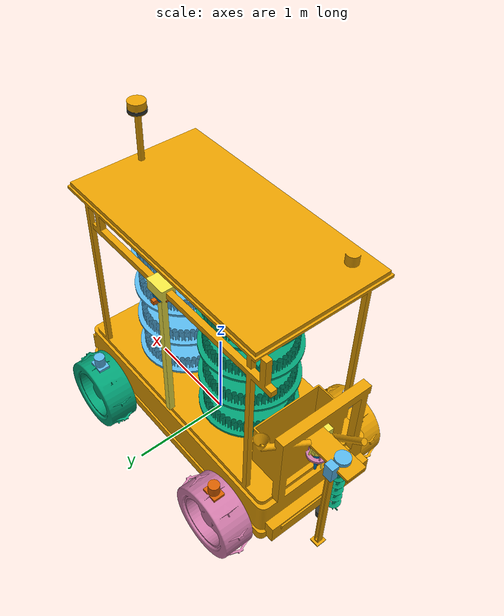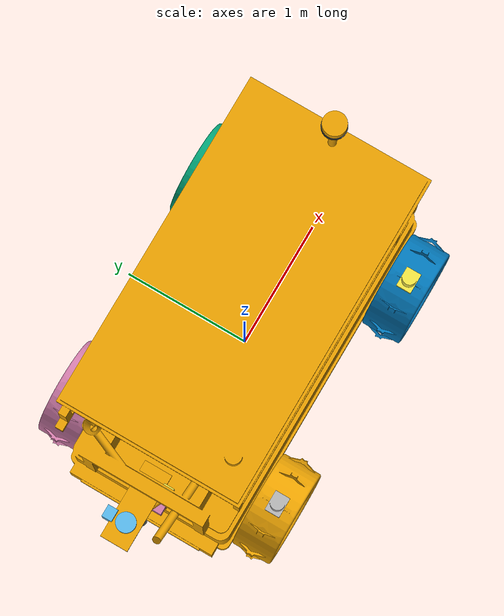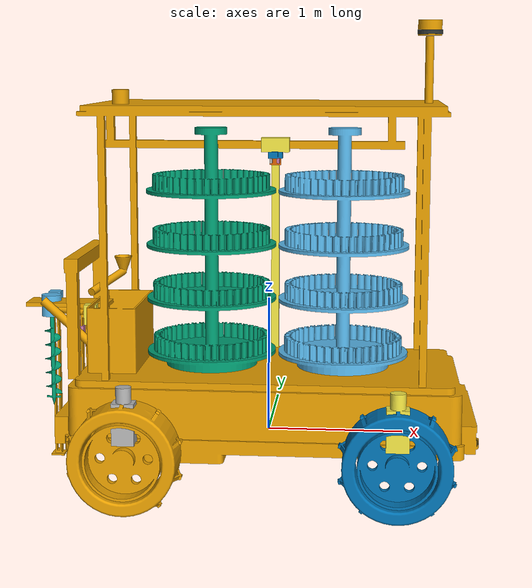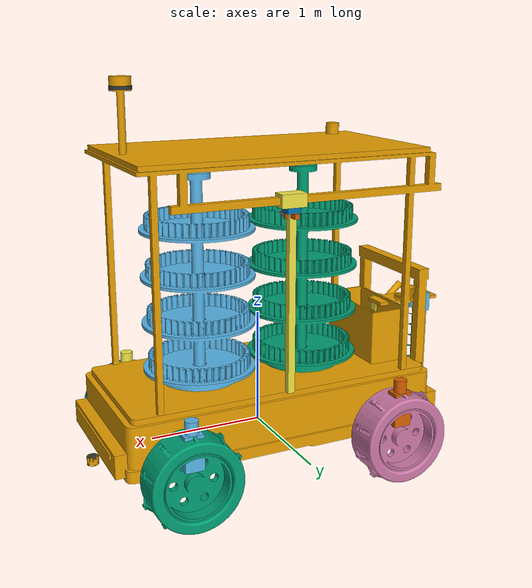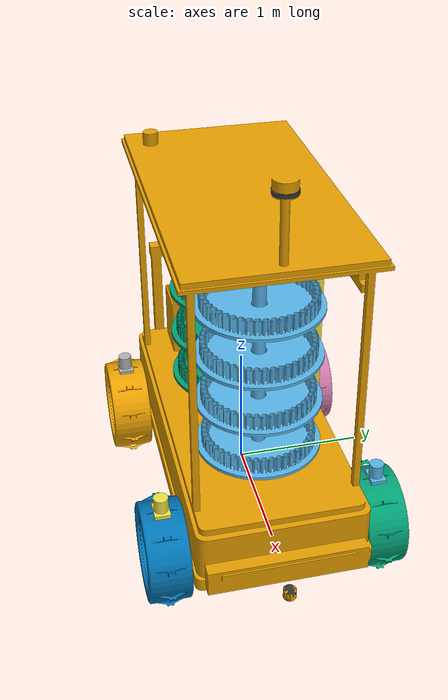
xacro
<?xml version="1.0"?>
<robot name="jaal" xmlns:xacro="http://www.ros.org/wiki/xacro">
  <xacro:arg name="ns" default="jaal_1"/>
  <xacro:arg name="soil_map" default=""/>
  <xacro:arg name="lidar" default="true"/>
  <xacro:arg name="gnss_sigma" default="0.02"/>
  <xacro:arg name="inspect_cam" default="false"/>
  <xacro:property name="ns" value="$(arg ns)"/>
  <xacro:property name="R" value="jaal"/>
  <xacro:include filename="$(find fs_description)/urdf/common.xacro"/>

  <link name="base_link">
    <!-- 30 kWh LFP pack low in the body; payload half used -->
    <xacro:box_inertial m="1000" x="2.8" y="1.3" z="0.9"><origin xyz="0 0 0.28"/></xacro:box_inertial>
    <xacro:cbox xyz="0 0 0.22" size="2.8 1.3 0.45"/>
    <xacro:mesh_visual robot="${R}" link="base_link"/>
  </link>

  <xacro:macro name="module" params="tag x y">
    <joint name="steer_${tag}_joint" type="revolute">
      <parent link="base_link"/><child link="steer_${tag}_link"/>
      <origin xyz="${x} ${y} 0.25"/><axis xyz="0 0 1"/>
      <limit lower="-2.0" upper="2.0" effort="800" velocity="3.0"/><dynamics damping="5"/>
    </joint>
    <link name="steer_${tag}_link">
      <inertial><mass value="8"/><inertia ixx="0.1" iyy="0.1" izz="0.1" ixy="0" ixz="0" iyz="0"/></inertial>
      <xacro:mesh_visual robot="${R}" link="steer_${tag}_link"/>
    </link>
    <xacro:wheel effort="900" name="wheel_${tag}" parent="steer_${tag}_link" xyz="0 0 -0.25" r="0.38" w="0.32" m="42" robot="${R}"/>
  </xacro:macro>
  <xacro:module tag="fl" x="0.95" y="0.83"/>
  <xacro:module tag="fr" x="0.95" y="-0.83"/>
  <xacro:module tag="rl" x="-0.95" y="0.83"/>
  <xacro:module tag="rr" x="-0.95" y="-0.83"/>

  <!-- ===================== sapling drums ===================== -->
  <xacro:macro name="drum" params="tag x">
    <joint name="drum_${tag}_joint" type="continuous">
      <parent link="base_link"/><child link="drum_${tag}_link"/>
      <origin xyz="${x} 0 0.5"/><axis xyz="0 0 1"/><limit effort="300" velocity="2"/><dynamics damping="5"/>
    </joint>
    <link name="drum_${tag}_link">
      <inertial><origin xyz="0 0 0.8"/><mass value="45"/><inertia ixx="12" iyy="12" izz="5" ixy="0" ixz="0" iyz="0"/></inertial>
      <xacro:mesh_visual robot="${R}" link="drum_${tag}_link"/>
    </link>
  </xacro:macro>
  <xacro:drum tag="f" x="0.55"/>
  <xacro:drum tag="r" x="-0.43"/>

  <!-- ===================== Cartesian plug picker ===================== -->
  <joint name="picker_x_joint" type="prismatic">
    <parent link="base_link"/><child link="picker_x_link"/>
    <origin xyz="0 0.62 2.1"/><axis xyz="1 0 0"/>
    <limit lower="-1.3" upper="0.8" effort="500" velocity="1.0"/><dynamics damping="20"/>
  </joint>
  <link name="picker_x_link">
    <inertial><origin xyz="0 0 -0.8"/><mass value="8"/><inertia ixx="1.7" iyy="1.7" izz="0.02" ixy="0" ixz="0" iyz="0"/></inertial>
    <xacro:mesh_visual robot="${R}" link="picker_x_link"/>
  </link>
  <joint name="picker_z_joint" type="prismatic">
    <parent link="picker_x_link"/><child link="picker_z_link"/>
    <origin xyz="0 0 -0.06"/><axis xyz="0 0 -1"/>
    <limit lower="0" upper="1.5" effort="300" velocity="1.0"/><dynamics damping="20"/>
  </joint>
  <link name="picker_z_link">
    <inertial><mass value="2"/><inertia ixx="0.005" iyy="0.005" izz="0.005" ixy="0" ixz="0" iyz="0"/></inertial>
    <xacro:mesh_visual robot="${R}" link="picker_z_link"/>
  </link>
  <joint name="picker_y_joint" type="prismatic">
    <parent link="picker_z_link"/><child link="picker_y_link"/>
    <origin xyz="0 0.10 -0.06"/><axis xyz="0 -1 0"/>
    <limit lower="0" upper="0.16" effort="200" velocity="0.5"/><dynamics damping="10"/>
  </joint>
  <link name="picker_y_link">
    <inertial><mass value="1"/><inertia ixx="0.003" iyy="0.003" izz="0.003" ixy="0" ixz="0" iyz="0"/></inertial>
    <xacro:mesh_visual robot="${R}" link="picker_y_link"/>
  </link>
  <xacro:macro name="h_finger" params="tag x axis">
    <joint name="finger_${tag}_joint" type="prismatic">
      <parent link="picker_y_link"/><child link="finger_${tag}_link"/>
      <origin xyz="${x} -0.125 0"/><axis xyz="${axis} 0 0"/>
      <limit lower="0" upper="0.014" effort="100" velocity="0.1"/><dynamics damping="2"/>
    </joint>
    <link name="finger_${tag}_link">
      <inertial><mass value="0.2"/><inertia ixx="0.0002" iyy="0.0002" izz="0.0002" ixy="0" ixz="0" iyz="0"/></inertial>
      <xacro:mesh_visual robot="${R}" link="finger_${tag}_link"/>
    </link>
  </xacro:macro>
  <xacro:h_finger tag="a" x="0.03" axis="-1"/>
  <xacro:h_finger tag="b" x="-0.03" axis="1"/>

  <!-- ===================== rear planting head on a shuttle ===================== -->
  <joint name="shuttle_joint" type="prismatic">
    <parent link="base_link"/><child link="shuttle_link"/>
    <origin xyz="-1.65 0 0.92"/><axis xyz="1 0 0"/>
    <limit lower="-0.30" upper="0.02" effort="2000" velocity="0.6"/><dynamics damping="40"/>
  </joint>
  <link name="shuttle_link">
    <inertial><origin xyz="0.14 0 0"/><mass value="12"/><inertia ixx="0.1" iyy="0.4" izz="0.4" ixy="0" ixz="0" iyz="0"/></inertial>
    <xacro:mesh_visual robot="${R}" link="shuttle_link"/>
  </link>
  <xacro:auger_head robot="${R}" parent="shuttle_link" xyz="0 0 0" length="0.72" stroke="1.1"/>
  <xacro:duckbill_head robot="${R}" parent="shuttle_link" xyz="0.28 0 -0.04" stroke="1.2" tamp_xyz="0.28 0 -0.18" tamp_stroke="1.2"/>

  <xacro:gnss ns="${ns}" parent="base_link" xyz="1.15 0 2.95" sigma="$(arg gnss_sigma)"/>
  <xacro:imu ns="${ns}" name="imu" parent="base_link" xyz="0 0 0.3"/>
  <xacro:if value="$(arg lidar)">
    <xacro:lidar2d ns="${ns}" parent="base_link" xyz="1.52 0 -0.08"/>  <!-- 0.30 m above ground: sees stumps -->
    <!-- rear: the planting head works at the back, where people walk up to it -->
    <xacro:lidar2d ns="${ns}" parent="base_link" xyz="-1.52 0 -0.08" rpy="0 0 3.14159" name="lidar_rear" topic="scan_rear"/>
  </xacro:if>
  <xacro:if value="$(arg inspect_cam)">
    <xacro:inspect_camera ns="${ns}" parent="base_link" xyz="-0.9 4.4 1.7" rpy="0 0.22 -1.5708"/>
  </xacro:if>

  <gazebo>
    <plugin filename="fs_swerve_drive_system" name="fs::SwerveDrive">
      <module><steer_joint>steer_fl_joint</steer_joint><wheel_joint>wheel_fl_joint</wheel_joint><x>0.95</x><y>0.83</y></module>
      <module><steer_joint>steer_fr_joint</steer_joint><wheel_joint>wheel_fr_joint</wheel_joint><x>0.95</x><y>-0.83</y></module>
      <module><steer_joint>steer_rl_joint</steer_joint><wheel_joint>wheel_rl_joint</wheel_joint><x>-0.95</x><y>0.83</y></module>
      <module><steer_joint>steer_rr_joint</steer_joint><wheel_joint>wheel_rr_joint</wheel_joint><x>-0.95</x><y>-0.83</y></module>
      <wheel_radius>0.38</wheel_radius>
      <topic>/model/${ns}/cmd_vel</topic><odom_topic>/model/${ns}/odometry</odom_topic>
      <odom_frame>${ns}/odom</odom_frame><base_frame>${ns}/base_link</base_frame>
      <max_speed>1.5</max_speed><max_accel>0.6</max_accel><max_yaw_rate>0.8</max_yaw_rate>
      <max_steer_rate>2.5</max_steer_rate><steer_p_gain>10</steer_p_gain>
    </plugin>
    <xacro:common_plugins ns="${ns}"/>
    <xacro:pos_controller ns="${ns}" joint="drum_f_joint" p="4" vmax="1.5" init="0.0"/>
    <xacro:pos_controller ns="${ns}" joint="drum_r_joint" p="4" vmax="1.5" init="0.0"/>
    <xacro:pos_controller ns="${ns}" joint="picker_x_joint" p="4" vmax="1.0" init="-1.2"/>
    <xacro:pos_controller ns="${ns}" joint="picker_z_joint" p="4" vmax="1.0" init="0.74"/>
    <xacro:pos_controller ns="${ns}" joint="picker_y_joint" p="5" vmax="0.4" init="0.0"/>
    <xacro:pos_controller ns="${ns}" joint="finger_a_joint" p="6" vmax="0.08" init="0.0"/>
    <xacro:pos_controller ns="${ns}" joint="finger_b_joint" p="6" vmax="0.08" init="0.0"/>
    <xacro:pos_controller ns="${ns}" joint="shuttle_joint" p="4" vmax="0.6" init="0.0"/>
    <xacro:pos_controller ns="${ns}" joint="duckbill_feed_joint" p="6" vmax="1.0" init="0.0"/>
    <xacro:pos_controller ns="${ns}" joint="jaw_l_joint" p="6" vmax="2.0" init="0.0"/>
    <xacro:pos_controller ns="${ns}" joint="jaw_r_joint" p="6" vmax="2.0" init="0.0"/>
    <xacro:pos_controller ns="${ns}" joint="tamp_joint" p="6" vmax="1.0" init="0.0"/>
    <plugin filename="fs_terramechanics_system" name="fs::Terramechanics">
      <soil_map>$(arg soil_map)</soil_map>
      <topic>/model/${ns}/terramechanics</topic>
      <xacro:tm_wheel link="wheel_fl_link" r="0.38" b="0.32" l="0.19"/>
      <xacro:tm_wheel link="wheel_fr_link" r="0.38" b="0.32" l="0.19"/>
      <xacro:tm_wheel link="wheel_rl_link" r="0.38" b="0.32" l="0.19"/>
      <xacro:tm_wheel link="wheel_rr_link" r="0.38" b="0.32" l="0.19"/>
    </plugin>
    <plugin filename="fs_auger_soil_system" name="fs::AugerSoil">
      <soil_map>$(arg soil_map)</soil_map>
      <feed_joint>auger_feed_joint</feed_joint><spin_joint>auger_spin_joint</spin_joint>
      <tip_link>auger_link</tip_link><reaction_link>shuttle_link</reaction_link><tip_offset>0 0 -0.72</tip_offset><tool_axis>0 0 -1</tool_axis>
      <diameter>0.12</diameter><max_power>4000</max_power><efficiency>0.85</efficiency>
      <max_thrust>3000</max_thrust><max_feed>0.15</max_feed><rpm>140</rpm><max_stroke>1.1</max_stroke>
      <cmd_topic>/model/${ns}/auger/cmd</cmd_topic><status_topic>/model/${ns}/auger/status</status_topic>
    </plugin>
    <plugin filename="fs_plug_inventory_system" name="fs::PlugInventory">
      <xacro:plug_inventory_begin ns="${ns}"/>
      <carrier><name>drum_f</name><link>drum_f_link</link><ring><radius>0.41</radius><count>45</count><tiers>4</tiers><z0>0.117</z0><dz>0.4</dz></ring><fill>180</fill></carrier>
      <carrier><name>drum_r</name><link>drum_r_link</link><ring><radius>0.41</radius><count>45</count><tiers>4</tiers><z0>0.117</z0><dz>0.4</dz></ring><fill>180</fill></carrier>
      <holder><name>gripper</name><link>picker_y_link</link><xyz>0 -0.19 -0.06</xyz></holder>
      <holder><name>duckbill</name><link>duckbill_feed_link</link><xyz>0 0 -0.38</xyz></holder>
    </plugin>
  </gazebo>
</robot>

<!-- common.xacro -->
<!--
  Shared macros for the ForestStark robots: inertia helpers, materials, wheels, sensors and the
  auger head. Every gz topic is under /model/${ns}/...; fs_bringup's bridge maps them to /${ns}/...
-->
<robot xmlns:xacro="http://www.ros.org/wiki/xacro">

  <xacro:property name="PI" value="3.14159265"/>
  <!-- Wheel/track collisions are nearly frictionless: fs::Terramechanics supplies the soil forces. -->
  <xacro:property name="TYRE_MU" value="0.02"/>

  <material name="fs_yellow"><color rgba="0.886 0.647 0.078 1"/></material>
  <material name="fs_graphite"><color rgba="0.19 0.21 0.20 1"/></material>
  <material name="fs_steel"><color rgba="0.56 0.60 0.61 1"/></material>
  <material name="fs_rubber"><color rgba="0.10 0.11 0.11 1"/></material>
  <material name="fs_blue"><color rgba="0.18 0.42 0.56 1"/></material>
  <material name="fs_leaf"><color rgba="0.31 0.60 0.25 1"/></material>
  <material name="fs_glass"><color rgba="0.66 0.80 0.84 0.35"/></material>
  <material name="fs_solar"><color rgba="0.12 0.20 0.33 1"/></material>
  <material name="fs_skin"><color rgba="0.72 0.50 0.35 1"/></material>
  <material name="fs_cloth"><color rgba="0.23 0.35 0.55 1"/></material>
  <material name="fs_orange"><color rgba="1.0 0.48 0.10 1"/></material>
  <material name="fs_shade"><color rgba="0.21 0.37 0.23 0.6"/></material>

  <xacro:macro name="box_inertial" params="m x y z *origin">
    <inertial>
      <xacro:insert_block name="origin"/>
      <mass value="${m}"/>
      <inertia ixx="${m*(y*y+z*z)/12}" iyy="${m*(x*x+z*z)/12}" izz="${m*(x*x+y*y)/12}" ixy="0" ixz="0" iyz="0"/>
    </inertial>
  </xacro:macro>

  <xacro:macro name="cyl_inertial_y" params="m r l">
    <inertial>
      <mass value="${m}"/>
      <inertia ixx="${m*(3*r*r+l*l)/12}" iyy="${m*r*r/2}" izz="${m*(3*r*r+l*l)/12}" ixy="0" ixz="0" iyz="0"/>
    </inertial>
  </xacro:macro>

  <xacro:macro name="vbox" params="xyz size material rpy:='0 0 0'">
    <visual><origin xyz="${xyz}" rpy="${rpy}"/><geometry><box size="${size}"/></geometry><material name="${material}"/></visual>
  </xacro:macro>
  <xacro:macro name="vcyl" params="xyz r l material rpy:='0 0 0'">
    <visual><origin xyz="${xyz}" rpy="${rpy}"/><geometry><cylinder radius="${r}" length="${l}"/></geometry><material name="${material}"/></visual>
  </xacro:macro>
  <xacro:macro name="cbox" params="xyz size rpy:='0 0 0'">
    <collision><origin xyz="${xyz}" rpy="${rpy}"/><geometry><box size="${size}"/></geometry></collision>
  </xacro:macro>

  <xacro:macro name="mesh_visual" params="robot link">
    <visual><geometry><mesh filename="file://$(find fs_description)/meshes/${robot}/${link}.obj"/></geometry></visual>
  </xacro:macro>

  <!-- effort: the most torque the drive can put on the wheel, N m (free-rolling wheels: bearing drag only) -->
  <xacro:macro name="wheel" params="name parent xyz r w m rim:=fs_yellow shape:=cylinder robot:='' effort:=6000">
    <joint name="${name}_joint" type="continuous">
      <parent link="${parent}"/><child link="${name}_link"/>
      <origin xyz="${xyz}"/><axis xyz="0 1 0"/>
      <limit effort="${effort}" velocity="40"/><dynamics damping="0.5"/>
    </joint>
    <link name="${name}_link">
      <xacro:cyl_inertial_y m="${m}" r="${r}" l="${w}"/>
      <xacro:if value="${robot != ''}"><xacro:mesh_visual robot="${robot}" link="${name}_link"/></xacro:if>
      <xacro:unless value="${robot != ''}">
        <visual><origin rpy="${PI/2} 0 0"/><geometry><cylinder radius="${r}" length="${w}"/></geometry><material name="fs_rubber"/></visual>
        <visual><origin rpy="${PI/2} 0 0"/><geometry><cylinder radius="${r*0.62}" length="${w*1.04}"/></geometry><material name="${rim}"/></visual>
      </xacro:unless>
      <collision>
        <xacro:if value="${shape == 'sphere'}"><geometry><sphere radius="${r}"/></geometry></xacro:if>
        <xacro:unless value="${shape == 'sphere'}"><origin rpy="${PI/2} 0 0"/><geometry><cylinder radius="${r}" length="${w}"/></geometry></xacro:unless>
      </collision>
    </link>
    <gazebo reference="${name}_link"><mu1>${TYRE_MU}</mu1><mu2>${TYRE_MU}</mu2><kp>2e6</kp><kd>1e4</kd></gazebo>
  </xacro:macro>

  <xacro:macro name="tm_wheel" params="link r b l">
    <wheel><link>${link}</link><radius>${r}</radius><width>${b}</width><contact_length>${l}</contact_length><axis>0 1 0</axis></wheel>
  </xacro:macro>

  <xacro:macro name="gnss" params="ns parent xyz sigma:=0.02">
    <joint name="gnss_joint" type="fixed"><parent link="${parent}"/><child link="gnss_link"/><origin xyz="${xyz}"/></joint>
    <link name="gnss_link">
      <visual><geometry><cylinder radius="0.09" length="0.03"/></geometry><material name="fs_graphite"/></visual>
    </link>
    <gazebo reference="gnss_link">
      <sensor name="gnss" type="navsat">
        <always_on>1</always_on><update_rate>10</update_rate><topic>/model/${ns}/gnss</topic>
        <gz_frame_id>${ns}/gnss_link</gz_frame_id>
        <navsat>
          <position_sensing>
            <!-- gz applies horizontal position noise to latitude/longitude in DEGREES: convert from metres. -->
            <horizontal><noise type="gaussian"><mean>0</mean><stddev>${sigma/111320.0}</stddev></noise></horizontal>
            <vertical><noise type="gaussian"><mean>0</mean><stddev>${sigma*2}</stddev></noise></vertical>
          </position_sensing>
          <velocity_sensing>
            <horizontal><noise type="gaussian"><mean>0</mean><stddev>0.02</stddev></noise></horizontal>
            <vertical><noise type="gaussian"><mean>0</mean><stddev>0.04</stddev></noise></vertical>
          </velocity_sensing>
        </navsat>
      </sensor>
    </gazebo>
  </xacro:macro>

  <xacro:macro name="imu" params="ns name parent xyz">
    <joint name="${name}_joint" type="fixed"><parent link="${parent}"/><child link="${name}_link"/><origin xyz="${xyz}"/></joint>
    <link name="${name}_link"/>
    <gazebo reference="${name}_link">
      <sensor name="${name}" type="imu">
        <always_on>1</always_on><update_rate>100</update_rate><topic>/model/${ns}/${name}</topic>
        <gz_frame_id>${ns}/${name}_link</gz_frame_id>
        <imu>
          <angular_velocity>
            <x><noise type="gaussian"><mean>0</mean><stddev>0.002</stddev><bias_mean>0.0005</bias_mean></noise></x>
            <y><noise type="gaussian"><mean>0</mean><stddev>0.002</stddev><bias_mean>0.0005</bias_mean></noise></y>
            <z><noise type="gaussian"><mean>0</mean><stddev>0.002</stddev><bias_mean>0.0005</bias_mean></noise></z>
          </angular_velocity>
          <linear_acceleration>
            <x><noise type="gaussian"><mean>0</mean><stddev>0.02</stddev></noise></x>
            <y><noise type="gaussian"><mean>0</mean><stddev>0.02</stddev></noise></y>
            <z><noise type="gaussian"><mean>0</mean><stddev>0.02</stddev></noise></z>
          </linear_acceleration>
        </imu>
      </sensor>
    </gazebo>
  </xacro:macro>

  <!-- Planar safety lidar. Needs rendering (gpu_lidar); off with lidar:=false. -->
  <!-- Planar lidar. name/topic let one robot carry several (Jaal front and rear). -->
  <xacro:macro name="lidar2d" params="ns parent xyz rpy:='0 0 0' name:=lidar topic:=scan fov:=4.71 samples:=540 max_range:=20.0">
    <joint name="${name}_joint" type="fixed"><parent link="${parent}"/><child link="${name}_link"/><origin xyz="${xyz}" rpy="${rpy}"/></joint>
    <link name="${name}_link">
      <visual><geometry><cylinder radius="0.05" length="0.07"/></geometry><material name="fs_graphite"/></visual>
    </link>
    <gazebo reference="${name}_link">
      <sensor name="${name}" type="gpu_lidar">
        <always_on>1</always_on><update_rate>10</update_rate><topic>/model/${ns}/${topic}</topic>
        <gz_frame_id>${ns}/${name}_link</gz_frame_id>
        <lidar>
          <scan><horizontal><samples>${samples}</samples><resolution>1</resolution>
            <min_angle>${-fov/2}</min_angle><max_angle>${fov/2}</max_angle></horizontal></scan>
          <range><min>0.3</min><max>${max_range}</max><resolution>0.01</resolution></range>
          <noise type="gaussian"><mean>0</mean><stddev>0.01</stddev></noise>
        </lidar>
      </sensor>
    </gazebo>
  </xacro:macro>

  <!-- Auger head: prismatic feed (positive = down along the tool), spin joint, auger link whose
       origin is at the feed carrier; the bit tip is at feed_axis * length. -->
  <xacro:macro name="auger_head" params="robot parent xyz rpy:='0 0 0' length stroke feed_axis:='0 0 -1' spin_axis:='0 0 1' mesh:='auger_link'">
    <joint name="auger_feed_joint" type="prismatic">
      <parent link="${parent}"/><child link="auger_feed_link"/>
      <origin xyz="${xyz}" rpy="${rpy}"/><axis xyz="${feed_axis}"/>
      <limit lower="0" upper="${stroke}" effort="20000" velocity="0.6"/><dynamics damping="50"/>
    </joint>
    <link name="auger_feed_link">
      <inertial><mass value="8"/><inertia ixx="0.05" iyy="0.05" izz="0.05" ixy="0" ixz="0" iyz="0"/></inertial>
      <xacro:mesh_visual robot="${robot}" link="auger_feed_link"/>
    </link>
    <joint name="auger_spin_joint" type="continuous">
      <parent link="auger_feed_link"/><child link="auger_link"/>
      <axis xyz="${spin_axis}"/><limit effort="3000" velocity="30"/>
    </joint>
    <link name="auger_link">
      <inertial><mass value="10"/><inertia ixx="0.3" iyy="0.3" izz="0.3" ixy="0" ixz="0" iyz="0"/></inertial>
      <xacro:mesh_visual robot="${robot}" link="${mesh}"/>
    </link>
  </xacro:macro>

  <!-- Duckbill planting jaw on a prismatic feed, two hinged half-jaws, tamp ring on its own feed.
       Plugs are carried in the closed jaw; opening it in the hole releases the plug. -->
  <xacro:macro name="duckbill_head" params="robot parent xyz stroke tamp_xyz tamp_stroke">
    <joint name="duckbill_feed_joint" type="prismatic">
      <parent link="${parent}"/><child link="duckbill_feed_link"/>
      <origin xyz="${xyz}"/><axis xyz="0 0 -1"/>
      <limit lower="0" upper="${stroke}" effort="5000" velocity="0.8"/><dynamics damping="30"/>
    </joint>
    <link name="duckbill_feed_link">
      <inertial><origin xyz="0 0 -0.05"/><mass value="6"/><inertia ixx="0.03" iyy="0.03" izz="0.01" ixy="0" ixz="0" iyz="0"/></inertial>
      <xacro:mesh_visual robot="${robot}" link="duckbill_feed_link"/>
    </link>
    <xacro:macro name="jaw" params="side y axis">
      <joint name="jaw_${side}_joint" type="revolute">
        <parent link="duckbill_feed_link"/><child link="jaw_${side}_link"/>
        <origin xyz="0 ${y} -0.10"/><axis xyz="${axis} 0 0"/>
        <limit lower="0" upper="0.6" effort="500" velocity="2"/><dynamics damping="2"/>
      </joint>
      <link name="jaw_${side}_link">
        <inertial><origin xyz="0 0 -0.15"/><mass value="1.5"/><inertia ixx="0.012" iyy="0.012" izz="0.001" ixy="0" ixz="0" iyz="0"/></inertial>
        <xacro:mesh_visual robot="${robot}" link="jaw_${side}_link"/>
      </link>
    </xacro:macro>
    <xacro:jaw side="l" y="0.046" axis="1"/>
    <xacro:jaw side="r" y="-0.046" axis="-1"/>
    <joint name="tamp_joint" type="prismatic">
      <parent link="${parent}"/><child link="tamp_link"/>
      <origin xyz="${tamp_xyz}"/><axis xyz="0 0 -1"/>
      <limit lower="0" upper="${tamp_stroke}" effort="3000" velocity="0.8"/><dynamics damping="30"/>
    </joint>
    <link name="tamp_link">
      <inertial><mass value="3"/><inertia ixx="0.01" iyy="0.01" izz="0.02" ixy="0" ixz="0" iyz="0"/></inertial>
      <xacro:mesh_visual robot="${robot}" link="tamp_link"/>
    </link>
  </xacro:macro>

  <!-- fs::PlugInventory: plugs as visuals riding on their carrier links; see fs_gazebo/src/PlugInventory.cc -->
  <xacro:macro name="plug_inventory_begin" params="ns">
    <plug_mesh>file://$(find fs_description)/meshes/plug.obj</plug_mesh>
    <cmd_topic>/model/${ns}/plugs/cmd</cmd_topic><status_topic>/model/${ns}/plugs/status</status_topic>
  </xacro:macro>

  <xacro:macro name="person" params="parent name xyz robot rpy:='0 0 0'">
    <joint name="${name}_joint" type="fixed"><parent link="${parent}"/><child link="${name}_link"/><origin xyz="${xyz}" rpy="${rpy}"/></joint>
    <link name="${name}_link"><xacro:mesh_visual robot="${robot}" link="${name}_link"/></link>
  </xacro:macro>

  <!-- Optional inspection camera (inspect_cam:=true): saves PNG frames to $(arg inspect_path) so a
       headless run can be looked at afterwards. Needs rendering. -->
  <xacro:arg name="inspect_path" default="/tmp/fs_inspect"/>
  <xacro:macro name="inspect_camera" params="ns parent xyz rpy hfov:=1.1">
    <joint name="inspect_cam_joint" type="fixed"><parent link="${parent}"/><child link="inspect_cam_link"/><origin xyz="${xyz}" rpy="${rpy}"/></joint>
    <link name="inspect_cam_link"/>
    <gazebo reference="inspect_cam_link">
      <sensor name="inspect_cam" type="camera">
        <always_on>1</always_on><update_rate>2</update_rate><topic>/model/${ns}/inspect_cam</topic>
        <camera><horizontal_fov>${hfov}</horizontal_fov><image><width>960</width><height>600</height></image>
          <clip><near>0.05</near><far>60</far></clip>
          <save enabled="true"><path>$(arg inspect_path)</path></save></camera>
      </sensor>
    </gazebo>
  </xacro:macro>

  <!-- Velocity-mode joint position controller: topic /model/${ns}/joint/${joint}/cmd_pos. -->
  <xacro:macro name="pos_controller" params="ns joint p:=2.0 vmax:=0.8 init:=0.0">
    <plugin filename="gz-sim-joint-position-controller-system" name="gz::sim::systems::JointPositionController">
      <joint_name>${joint}</joint_name>
      <topic>/model/${ns}/joint/${joint}/cmd_pos</topic>
      <use_velocity_commands>true</use_velocity_commands>
      <p_gain>${p}</p_gain><i_gain>0</i_gain><d_gain>0</d_gain>
      <cmd_max>${vmax}</cmd_max><cmd_min>${-vmax}</cmd_min>
      <initial_position>${init}</initial_position>
    </plugin>
  </xacro:macro>

  <xacro:macro name="common_plugins" params="ns">
    <plugin filename="fs_joint_state_rate_system" name="fs::JointStateRate">
      <topic>/model/${ns}/joint_states</topic><update_rate>30</update_rate>
    </plugin>
    <!-- Ground truth for evaluation only; the autonomy stack never reads it. -->
    <plugin filename="gz-sim-odometry-publisher-system" name="gz::sim::systems::OdometryPublisher">
      <odom_frame>map</odom_frame><robot_base_frame>${ns}/base_link</robot_base_frame>
      <odom_topic>/model/${ns}/ground_truth</odom_topic><odom_publish_frequency>20</odom_publish_frequency>
      <dimensions>3</dimensions><tf_topic>/model/${ns}/ground_truth_tf</tf_topic>
    </plugin>
  </xacro:macro>
</robot>
